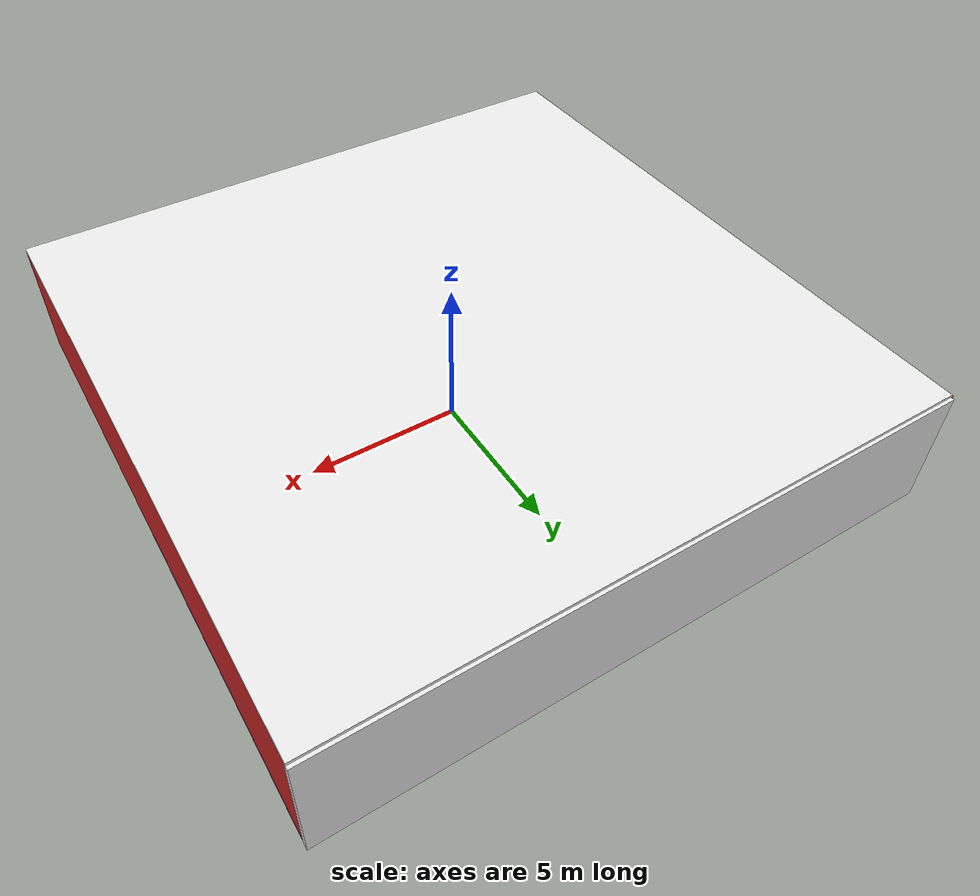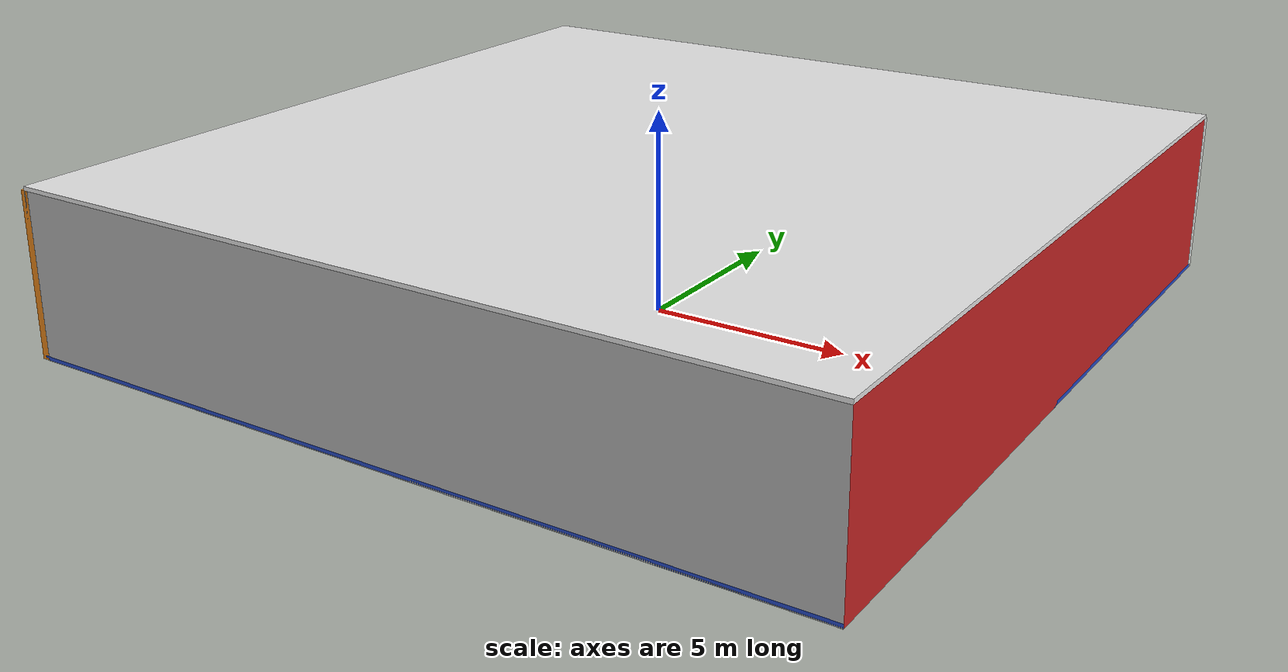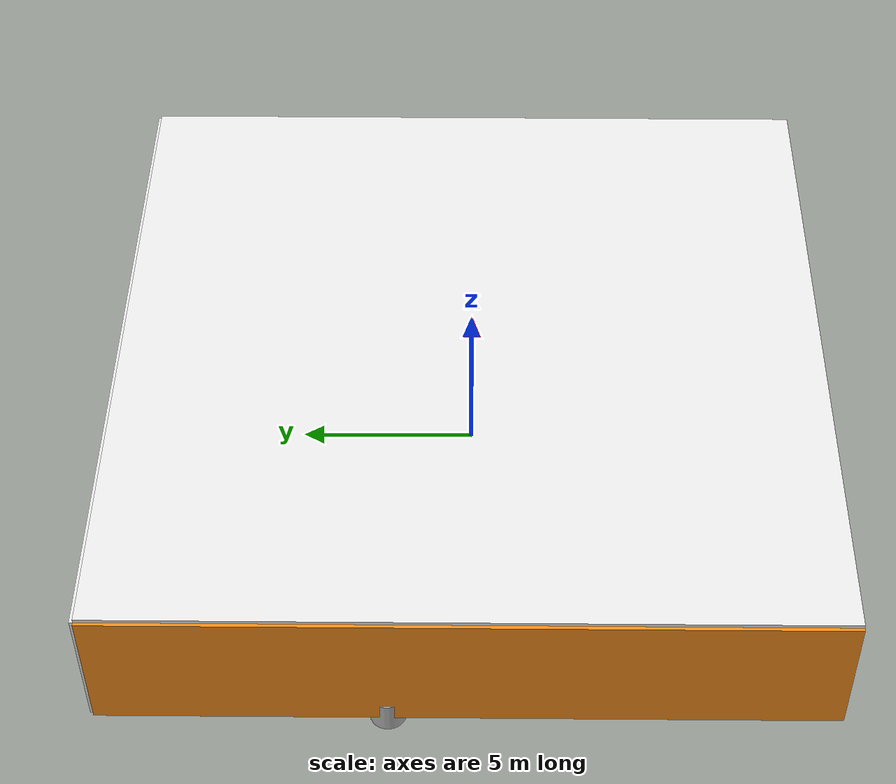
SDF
<sdf version="1.4">
 <world name="default">
  <physics type="ode">
   <max_step_size>0.001</max_step_size>
   <real_time_factor>1</real_time_factor>
   <real_time_update_rate>1000</real_time_update_rate>
   <gravity>0 0 -9.8</gravity>
  </physics>
  <scene><ambient>0.4 0.4 0.4 1</ambient><background>0.7 0.7 0.7 1</background><shadows>1</shadows></scene>
  <model name="Surrounding">
   <static>1</static>
   <link name="Ceiling">
    <collision name="Ceiling_Collision"><geometry><box><size>20 20 0.1</size></box></geometry></collision>
    <visual name="Ceiling_Visual">
     <geometry><box><size>20 20 0.1</size></box></geometry>
     <material>
      <script><uri>file://media/materials/scripts/gazebo.material</uri><name>Gazebo/White</name></script>
     </material>
    </visual>
    <pose>0 0 4.05 0 0 0</pose>
   </link>
   <link name="Wall_South">
    <collision name="Wall_South_Collision">
     <geometry><box><size>20 0 4</size></box></geometry>
     <pose>0 0 2 0 -0 0</pose>
    </collision>
    <visual name="Wall_South_Visual">
     <pose>0 0 2 0 -0 0</pose>
     <geometry><box><size>20 0 4</size></box></geometry>
     <material>
      <script><uri>file://media/materials/scripts/gazebo.material</uri><name>Gazebo/PioneerBody</name></script>
     </material>
    </visual>
    <velocity_decay><linear>0</linear><angular>0</angular></velocity_decay>
    <pose>0 -10 0 0 -0 0</pose>
   </link>
   <link name="Wall_East">
    <collision name="Wall_21_Collision">
     <geometry><box><size>20 0 4</size></box></geometry>
     <pose>0 0 2 0 -0 0</pose>
    </collision>
    <visual name="Wall_21_Visual">
     <pose>0 0 2 0 -0 0</pose>
     <geometry><box><size>20 0 4</size></box></geometry>
     <material>
      <script><uri>file://media/materials/scripts/gazebo.material</uri><name>Gazebo/Red</name></script>
     </material>
    </visual>
    <velocity_decay><linear>0</linear><angular>0</angular></velocity_decay>
    <pose>10 0 0 0 -0 1.5708</pose>
   </link>
   <link name="Wall_North">
    <collision name="Wall_22_Collision">
     <geometry><box><size>20 0.2 4</size></box></geometry>
     <pose>0 0 2 0 -0 0</pose>
    </collision>
    <visual name="Wall_22_Visual">
     <pose>0 0 2 0 -0 0</pose>
     <geometry><box><size>20 0.2 4</size></box></geometry>
     <material>
      <script><uri>file://media/materials/scripts/gazebo.material</uri><name>Gazebo/White</name></script>
     </material>
    </visual>
    <velocity_decay><linear>0</linear><angular>0</angular></velocity_decay>
    <pose>0 10 0 0 -0 0</pose>
   </link>
   <link name="Wall_West">
    <collision name="Wall_23_Collision">
     <geometry><box><size>20 0.2 4</size></box></geometry>
     <pose>0 0 2 0 -0 0</pose>
    </collision>
    <visual name="Wall_23_Visual">
     <pose>0 0 2 0 -0 0</pose>
     <geometry><box><size>20 0.2 4</size></box></geometry>
     <material>
      <script><uri>file://media/materials/scripts/gazebo.material</uri><name>Gazebo/Orange</name></script>
     </material>
    </visual>
    <velocity_decay><linear>0</linear><angular>0</angular></velocity_decay>
    <pose>-10 0 0 0 0 -1.5708</pose>
   </link>
   <link name="Ground_link">
    <collision name="collision">
     <pose>0 0 .05 0 -0 0</pose>
     <geometry><box><size>20 20 0.1</size></box></geometry>
    </collision>
    <visual name="visual">
     <pose>0 0 .05 0 -0 0</pose>
     <geometry><box><size>20 20 0.1</size></box></geometry>
     <material>
      <script><uri>file://media/materials/scripts/gazebo.material</uri><name>Gazebo/Blue</name></script>
     </material>
    </visual>
   </link>
   <static>1</static>
  </model>
  <spherical_coordinates>
   <surface_model>EARTH_WGS84</surface_model>
   <latitude_deg>0</latitude_deg>
   <longitude_deg>0</longitude_deg>
   <elevation>0</elevation>
   <heading_deg>0</heading_deg>
  </spherical_coordinates>
  <light name="lightball_0" type="diffuse">
   <diffuse>0.8 0.8 0.8 1</diffuse>
   <specular>0.2 0.2 0.2 1</specular>
   <attenuation>
    <range>100</range>
    <constant>0.7</constant>
    <linear>0.01</linear>
    <quadratic>0.001</quadratic>
   </attenuation>
   <direction>-0.5 0.1 -0.9</direction>
   <pose>4.97655055753 -4.2674484472 1.33143044161 0 0 0</pose>
  </light>
  <light name="lightball_1" type="diffuse">
   <diffuse>0.8 0.8 0.8 1</diffuse>
   <specular>0.2 0.2 0.2 1</specular>
   <attenuation>
    <range>100</range>
    <constant>0.7</constant>
    <linear>0.01</linear>
    <quadratic>0.001</quadratic>
   </attenuation>
   <direction>-0.5 0.1 -0.9</direction>
   <pose>-4.02142111225 3.60775104568 3.18112330006 0 0 0</pose>
  </light>
  <light name="lightball_2" type="diffuse">
   <diffuse>0.8 0.8 0.8 1</diffuse>
   <specular>0.2 0.2 0.2 1</specular>
   <attenuation>
    <range>100</range>
    <constant>0.7</constant>
    <linear>0.01</linear>
    <quadratic>0.001</quadratic>
   </attenuation>
   <direction>-0.5 0.1 -0.9</direction>
   <pose>1.4602951599 7.57278196507 1.3145062137 0 0 0</pose>
  </light>
  <light name="lightball_3" type="diffuse">
   <diffuse>0.8 0.8 0.8 1</diffuse>
   <specular>0.2 0.2 0.2 1</specular>
   <attenuation>
    <range>100</range>
    <constant>0.7</constant>
    <linear>0.01</linear>
    <quadratic>0.001</quadratic>
   </attenuation>
   <direction>-0.5 0.1 -0.9</direction>
   <pose>9.00116711618 -4.09422272118 1.12497023035 0 0 0</pose>
  </light>
  <light name="lightball_4" type="diffuse">
   <diffuse>0.8 0.8 0.8 1</diffuse>
   <specular>0.2 0.2 0.2 1</specular>
   <attenuation>
    <range>100</range>
    <constant>0.7</constant>
    <linear>0.01</linear>
    <quadratic>0.001</quadratic>
   </attenuation>
   <direction>-0.5 0.1 -0.9</direction>
   <pose>-6.41344317558 -1.53343677844 3.2638384322 0 0 0</pose>
  </light>
  <light name="lightball_5" type="diffuse">
   <diffuse>0.8 0.8 0.8 1</diffuse>
   <specular>0.2 0.2 0.2 1</specular>
   <attenuation>
    <range>100</range>
    <constant>0.7</constant>
    <linear>0.01</linear>
    <quadratic>0.001</quadratic>
   </attenuation>
   <direction>-0.5 0.1 -0.9</direction>
   <pose>0.415078602574 5.90526790759 2.89983347611 0 0 0</pose>
  </light>
  <light name="lightball_6" type="diffuse">
   <diffuse>0.8 0.8 0.8 1</diffuse>
   <specular>0.2 0.2 0.2 1</specular>
   <attenuation>
    <range>100</range>
    <constant>0.7</constant>
    <linear>0.01</linear>
    <quadratic>0.001</quadratic>
   </attenuation>
   <direction>-0.5 0.1 -0.9</direction>
   <pose>8.3170795006 3.41621072278 3.13032122423 0 0 0</pose>
  </light>
  <include><uri>model://cabinet</uri><pose>-6.43742839593 -0.685049259515 0 0 0 1.87067240316</pose></include>
  <include>
   <uri>model://textured_shapes</uri>
   <pose>-8.15017599249 2.33295661934 0 0 0 1.68864843583</pose>
  </include>
  <include><uri>model://cabinet</uri><pose>-5.15050695031 -8.15381742469 0 0 0 2.23511631784</pose></include>
  <include>
   <uri>model://textured_shapes</uri>
   <pose>-1.22420708369 6.99874231699 0 0 0 1.9468476233</pose>
  </include>
  <include>
   <uri>model://robocup_3Dsim_goal</uri>
   <pose>0.456469718067 0.366993891925 0 0 0 0.9849490809</pose>
  </include>
  <include>
   <uri>model://textured_shapes</uri>
   <pose>4.28062759926 0.415822596629 0 0 0 2.79593291456</pose>
  </include>
  <include>
   <uri>model://robocup_3Dsim_goal</uri>
   <pose>4.34574009501 7.38551337132 0 0 0 1.59300117407</pose>
  </include>
  <include>
   <uri>model://robocup_3Dsim_goal</uri>
   <pose>7.54105641376 -7.88483194302 0 0 0 2.11015275303</pose>
  </include>
 </world>
</sdf>

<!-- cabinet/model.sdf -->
<sdf version="1.5">
  <model name="cabinet">
    <static>true</static>
    <link name="cabinet_bottom_plate">
      <inertial>
        <pose>0 0 -1 0 0 0</pose>
        <inertia>
          <ixx>2.050000</ixx>
          <ixy>0</ixy>
          <ixz>0</ixz>
          <iyy>2.050000</iyy>
          <iyz>0</iyz>
          <izz>2.050000</izz>
        </inertia>
        <mass>25.000000</mass>
      </inertial>
      <collision name="cabinet_bottom_plate_geom">
        <pose>0 0 0.010000 0 0 0</pose>
        <geometry>
          <box>
            <size>0.450000 0.450000 0.020000</size>
          </box>
        </geometry>
      </collision>
      <visual name="cabinet_bottom_plate_geom_visual">
        <pose>0 0 0.010000 0 0 0</pose>
        <geometry>
          <box>
            <size>0.450000 0.450000 0.020000</size>
          </box>
        </geometry>
        <material>
          <script>
            <uri>model://media/materials/scripts/gazebo.material</uri>
            <name>Gazebo/Wood</name>
          </script>
        </material>
      </visual>
      <collision name="cabinet_bottom_plate_geom_cabinet_back_plate">
        <pose>0.235000 0 0.510000 0 0 0</pose>
        <geometry>
          <box>
            <size>0.020000 0.450000 1.020000</size>
          </box>
        </geometry>
      </collision>
      <visual name="cabinet_bottom_plate_geom_cabinet_back_plate_visual">
        <pose>0.235000 0 0.510000 0 0 0</pose>
        <geometry>
          <box>
            <size>0.020000 0.450000 1.020000</size>
          </box>
        </geometry>
        <material>
          <script>
            <uri>model://media/materials/scripts/gazebo.material</uri>
            <name>Gazebo/Wood</name>
          </script>
        </material>
      </visual>
      <collision name="cabinet_bottom_plate_geom_cabinet_left_plate">
        <pose>0 0.235000 0.510000 0 0 0</pose>
        <geometry>
          <box>
            <size>0.450000 0.020000 1.020000</size>
          </box>
        </geometry>
      </collision>
      <visual name="cabinet_bottom_plate_geom_cabinet_left_plate_visual">
        <pose>0 0.235000 0.510000 0 0 0</pose>
        <geometry>
          <box>
            <size>0.450000 0.020000 1.020000</size>
          </box>
        </geometry>
        <material>
          <script>
            <uri>model://media/materials/scripts/gazebo.material</uri>
            <name>Gazebo/Wood</name>
          </script>
        </material>
      </visual>
      <collision name="cabinet_bottom_plate_geom_cabinet_middle_plate">
        <pose>0 0 0.510000 0 0 0</pose>
        <geometry>
          <box>
            <size>0.450000 0.450000 0.020000</size>
          </box>
        </geometry>
      </collision>
      <visual name="cabinet_bottom_plate_geom_cabinet_middle_plate_visual">
        <pose>0 0 0.510000 0 0 0</pose>
        <geometry>
          <box>
            <size>0.450000 0.450000 0.020000</size>
          </box>
        </geometry>
        <material>
          <script>
            <uri>model://media/materials/scripts/gazebo.material</uri>
            <name>Gazebo/Wood</name>
          </script>
        </material>
      </visual>
      <collision name="cabinet_bottom_plate_geom_cabinet_right_plate">
        <pose>0 -0.235000 0.510000 0 0 0</pose>
        <geometry>
          <box>
            <size>0.450000 0.020000 1.020000</size>
          </box>
        </geometry>
      </collision>
      <visual name="cabinet_bottom_plate_geom_cabinet_right_plate_visual">
        <pose>0 -0.235000 0.510000 0 0 0</pose>
        <geometry>
          <box>
            <size>0.450000 0.020000 1.020000</size>
          </box>
        </geometry>
        <material>
          <script>
            <uri>model://media/materials/scripts/gazebo.material</uri>
            <name>Gazebo/Wood</name>
          </script>
        </material>
      </visual>
      <collision name="cabinet_bottom_plate_geom_cabinet_top_plate">
        <pose>0 0 1.010000 0 0 0</pose>
        <geometry>
          <box>
            <size>0.450000 0.450000 0.020000</size>
          </box>
        </geometry>
      </collision>
      <visual name="cabinet_bottom_plate_geom_cabinet_top_plate_visual">
        <pose>0 0 1.010000 0 0 0</pose>
        <geometry>
          <box>
            <size>0.450000 0.450000 0.020000</size>
          </box>
        </geometry>
        <material>
          <script>
            <uri>model://media/materials/scripts/gazebo.material</uri>
            <name>Gazebo/Wood</name>
          </script>
        </material>
      </visual>
    </link>
  </model>
</sdf>

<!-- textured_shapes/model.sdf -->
<sdf version="1.6">
  <model name="textured_shapes">
    <pose>0 0 0.5 0 0 0</pose>
    <link name="box">
      <pose>0 -1.5 0 0 0 0</pose>
      <collision name="collision">
        <geometry>
          <box>
            <size>1 1 1</size>
          </box>
        </geometry>
      </collision>
      <visual name="visual">
        <geometry>
          <box>
            <size>1 1 1</size>
          </box>
        </geometry>
        <material>
          <script>
            <uri>model://../model_source/models/textured_shapes/materials/scripts</uri>
            <uri>model://../model_source/models/textured_shapes/materials/textures</uri>
            <name>TexturedShape/Squares</name>
          </script>
        </material>
      </visual>
    </link>
    <link name="sphere">
      <collision name="collision">
        <geometry>
          <sphere>
            <radius>0.5</radius>
          </sphere>
        </geometry>
      </collision>
      <visual name="visual">
        <geometry>
          <sphere>
            <radius>0.5</radius>
          </sphere>
        </geometry>
        <material>
          <script>
            <uri>model://../model_source/models/textured_shapes/materials/scripts</uri>
            <uri>model://../model_source/models/textured_shapes/materials/textures</uri>
            <name>TexturedShape/Squares</name>
          </script>
        </material>
      </visual>
    </link>
    <link name="cylinder">
      <pose>0 1.5 0 0 0 0</pose>
      <collision name="collision">
        <geometry>
          <cylinder>
            <radius>0.5</radius>
            <length>1</length>
          </cylinder>
        </geometry>
      </collision>
      <visual name="visual">
        <geometry>
          <cylinder>
            <radius>0.5</radius>
            <length>1</length>
          </cylinder>
        </geometry>
        <material>
          <script>
            <uri>model://../model_source/models/textured_shapes/materials/scripts</uri>
            <uri>model://../model_source/models/textured_shapes/materials/textures</uri>
            <name>TexturedShape/Squares</name>
          </script>
        </material>
      </visual>
    </link>
  </model>
</sdf>

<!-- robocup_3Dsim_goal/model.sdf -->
<sdf version="1.5">
  <model name="robocup_3d_goal">
    <static>true</static>
    <link name="left_post">
      <pose>0 1.05 0.45 0 0 0</pose>
      <collision name="collision">
        <geometry>
          <cylinder>
            <radius>0.05</radius>
            <length>0.9</length>
          </cylinder>
        </geometry>
      </collision>
      <visual name="visual">
        <geometry>
          <cylinder>
            <radius>0.05</radius>
            <length>0.9</length>
          </cylinder>
        </geometry>
        <material>
          <script>
            <uri>file://media/materials/scripts/gazebo.material</uri>
            <name>Gazebo/ZincYellow</name>
          </script>
        </material>
      </visual>
    </link>
    <link name="left_support_horiz_lower">
      <pose>0.30 1.05 0.01 0 0 0</pose>
      <collision name="collision">
        <geometry>
          <box>
            <size>0.50 0.02 0.02</size>
          </box>
        </geometry>
      </collision>
      <visual name="visual">
        <geometry>
          <box>
            <size>0.50 0.02 0.02</size>
          </box>
        </geometry>
        <material>
          <script>
            <uri>file://media/materials/scripts/gazebo.material</uri>
            <name>Gazebo/White</name>
          </script>
        </material>
      </visual>
    </link>
    <link name="left_support_horiz_upper">
      <pose>0.30 1.05 0.79 0 0 0</pose>
      <collision name="collision">
        <geometry>
          <box>
            <size>0.50 0.02 0.02</size>
          </box>
        </geometry>
      </collision>
      <visual name="visual">
        <geometry>
          <box>
            <size>0.50 0.02 0.02</size>
          </box>
        </geometry>
        <material>
          <script>
            <uri>file://media/materials/scripts/gazebo.material</uri>
            <name>Gazebo/White</name>
          </script>
        </material>
      </visual>
    </link>
    <link name="left_support_vertical">
      <pose>0.56 1.05 0.4 0 1.5708 0</pose>
      <collision name="collision">
        <geometry>
          <box>
            <size>0.80 0.02 0.02</size>
          </box>
        </geometry>
      </collision>
      <visual name="visual">
        <geometry>
          <box>
            <size>0.80 0.02 0.02</size>
          </box>
        </geometry>
        <material>
          <script>
            <uri>file://media/materials/scripts/gazebo.material</uri>
            <name>Gazebo/White</name>
          </script>
        </material>
      </visual>
    </link>
    <link name="right_support_horiz_lower">
      <pose>0.30 -1.05 0.01 0 0 0</pose>
      <collision name="collision">
        <geometry>
          <box>
            <size>0.50 0.02 0.02</size>
          </box>
        </geometry>
      </collision>
      <visual name="visual">
        <geometry>
          <box>
            <size>0.50 0.02 0.02</size>
          </box>
        </geometry>
        <material>
          <script>
            <uri>file://media/materials/scripts/gazebo.material</uri>
            <name>Gazebo/White</name>
          </script>
        </material>
      </visual>
    </link>
    <link name="right_support_horiz_upper">
      <pose>0.30 -1.05 0.79 0 0 0</pose>
      <collision name="collision">
        <geometry>
          <box>
            <size>0.50 0.02 0.02</size>
          </box>
        </geometry>
      </collision>
      <visual name="visual">
        <geometry>
          <box>
            <size>0.50 0.02 0.02</size>
          </box>
        </geometry>
        <material>
          <script>
            <uri>file://media/materials/scripts/gazebo.material</uri>
            <name>Gazebo/White</name>
          </script>
        </material>
      </visual>
    </link>
    <link name="right_support_vertical">
      <pose>0.56 -1.05 0.4 0 1.5708 0</pose>
      <collision name="collision">
        <geometry>
          <box>
            <size>0.80 0.02 0.02</size>
          </box>
        </geometry>
      </collision>
      <visual name="visual">
        <geometry>
          <box>
            <size>0.80 0.02 0.02</size>
          </box>
        </geometry>
        <material>
          <script>
            <uri>file://media/materials/scripts/gazebo.material</uri>
            <name>Gazebo/White</name>
          </script>
        </material>
      </visual>
    </link>
    <link name="center_support_horiz_lower">
      <pose>0.56 0 0.01 0 1.5708 0</pose>
      <collision name="collision">
        <geometry>
          <box>
            <size>0.02 2.08 0.02</size>
          </box>
        </geometry>
      </collision>
      <visual name="visual">
        <geometry>
          <box>
            <size>0.02 2.08 0.02</size>
          </box>
        </geometry>
        <material>
          <script>
            <uri>file://media/materials/scripts/gazebo.material</uri>
            <name>Gazebo/White</name>
          </script>
        </material>
      </visual>
    </link>
    <link name="center_support_horiz_upper">
      <pose>0.56 0 0.79 0 1.5708 0</pose>
      <collision name="collision">
        <geometry>
          <box>
            <size>0.02 2.08 0.02</size>
          </box>
        </geometry>
      </collision>
      <visual name="visual">
        <geometry>
          <box>
            <size>0.02 2.08 0.02</size>
          </box>
        </geometry>
        <material>
          <script>
            <uri>file://media/materials/scripts/gazebo.material</uri>
            <name>Gazebo/White</name>
          </script>
        </material>
      </visual>
    </link>
    <link name="right_post">
      <pose>0 -1.05 0.45 0 0 0</pose>
      <collision name="collision">
        <geometry>
          <cylinder>
            <radius>0.05</radius>
            <length>0.9</length>
          </cylinder>
        </geometry>
      </collision>
      <visual name="visual">
        <geometry>
          <cylinder>
            <radius>0.05</radius>
            <length>0.9</length>
          </cylinder>
        </geometry>
        <material>
          <script>
            <uri>file://media/materials/scripts/gazebo.material</uri>
            <name>Gazebo/ZincYellow</name>
          </script>
        </material>
      </visual>
    </link>
    <link name="crossbar">
      <pose>0 0 0.85 1.57 1.57 0</pose>
      <collision name="collision">
        <geometry>
          <cylinder>
            <radius>0.05</radius>
            <length>2.0</length>
          </cylinder>
        </geometry>
      </collision>
      <visual name="visual">
        <geometry>
          <cylinder>
            <radius>0.05</radius>
            <length>2.0</length>
          </cylinder>
        </geometry>
        <material>
          <script>
            <uri>file://media/materials/scripts/gazebo.material</uri>
            <name>Gazebo/ZincYellow</name>
          </script>
        </material>
      </visual>
    </link>
    <link name="center_net">
      <pose>0.56 0 0.40 0 0 0</pose>
      <collision name="collision">
        <geometry>
          <box>
            <size>0.01 2.1 0.80</size>
          </box>
        </geometry>
      </collision>
      <visual name="visual">
        <geometry>
          <box>
            <size>0.01 2.1 0.80</size>
          </box>
        </geometry>
        <material>
          <script>
            <uri>model://../model_source/models/robocup09_spl_field/materials/scripts/</uri>
            <uri>model://../model_source/models/robocup09_spl_field/materials/textures/</uri>
            <name>RoboCup/Net</name>
          </script>
        </material>
      </visual>
    </link>
    <link name="left_net">
      <pose>0.30 1.05 0.40 0 0 0</pose>
      <collision name="collision">
        <geometry>
          <box>
            <size>0.50 0.01 0.76</size>
          </box>
        </geometry>
      </collision>
      <visual name="visual">
        <geometry>
          <box>
            <size>0.50 0.01 0.76</size>
          </box>
        </geometry>
        <material>
          <script>
            <uri>model://../model_source/models/robocup09_spl_field/materials/scripts/</uri>
            <uri>model://../model_source/models/robocup09_spl_field/materials/textures/</uri>
            <name>RoboCup/Net</name>
          </script>
        </material>
      </visual>
    </link>
    <link name="right_net">
      <pose>0.30 -1.05 0.40 0 0 0</pose>
      <collision name="collision">
        <geometry>
          <box>
            <size>0.50 0.01 0.76</size>
          </box>
        </geometry>
      </collision>
      <visual name="visual">
        <geometry>
          <box>
            <size>0.50 0.01 0.76</size>
          </box>
        </geometry>
        <material>
          <script>
            <uri>model://../model_source/models/robocup09_spl_field/materials/scripts/</uri>
            <uri>model://../model_source/models/robocup09_spl_field/materials/textures/</uri>
            <name>RoboCup/Net</name>
          </script>
        </material>
      </visual>
    </link>
  </model>
</sdf>
